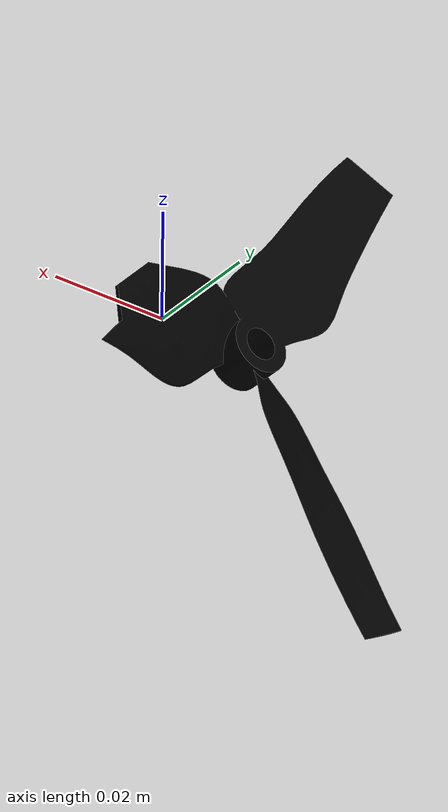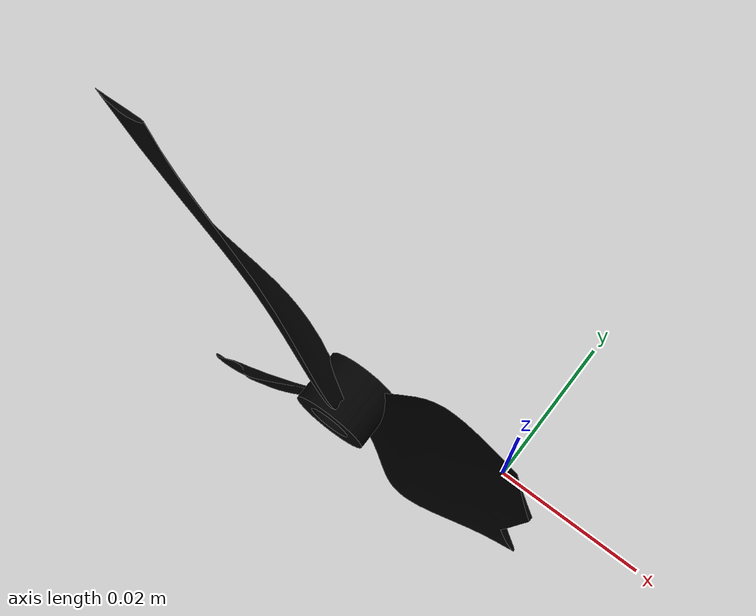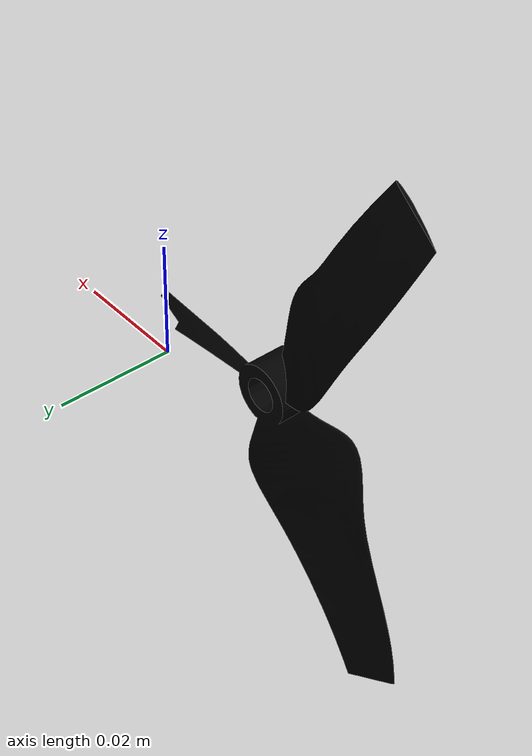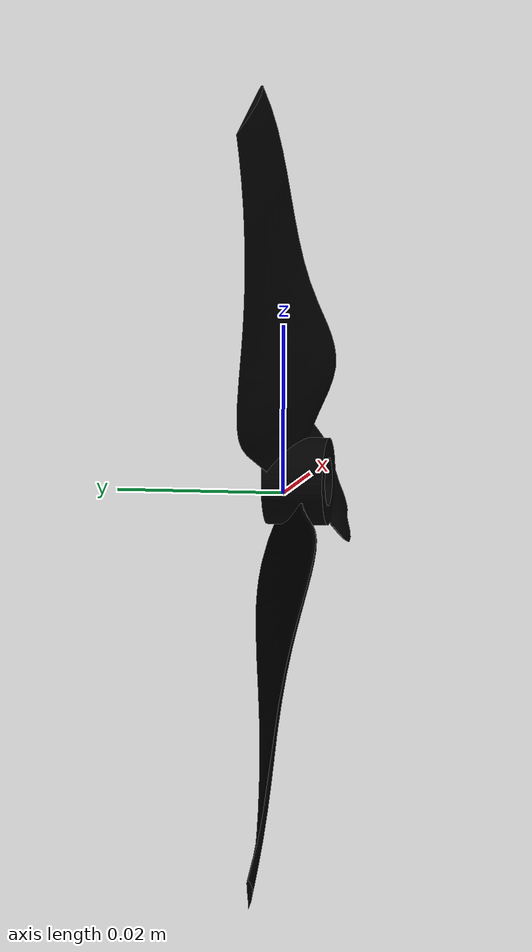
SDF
<?xml version="1.0" ?>
<sdf version="1.9">
  <model name="incomplete_prop">
    <static>true</static>
    <pose>0 0 0 1.5708 0 0</pose>

    <link name="link">
      <visual name="visual">
        <pose>-0.05 0.05 0 1.5708 0 0</pose>
        <geometry>
          <mesh>
            <uri>meshes/incomplete_prop.STL</uri>
            <scale>0.001 0.001 0.001</scale>
          </mesh>
        </geometry>
        <material>
          <ambient>0 0 0 1</ambient>
          <diffuse>0 0 0 1</diffuse>
          <specular>0 0 0 1</specular>
        </material>
      </visual>

      <collision name="collision">
        <geometry>
          <box>
            <size>0.15 0.15 0.02</size>
          </box>
        </geometry>
      </collision>
    </link>
  </model>
</sdf>
